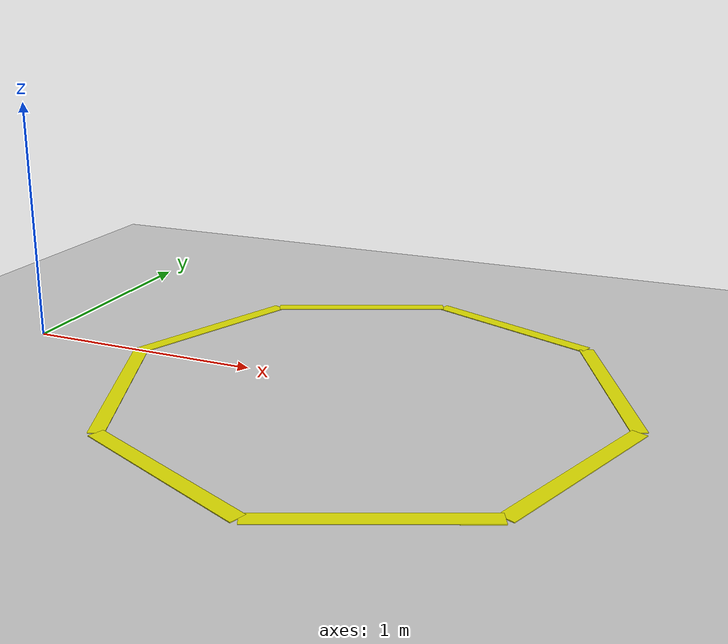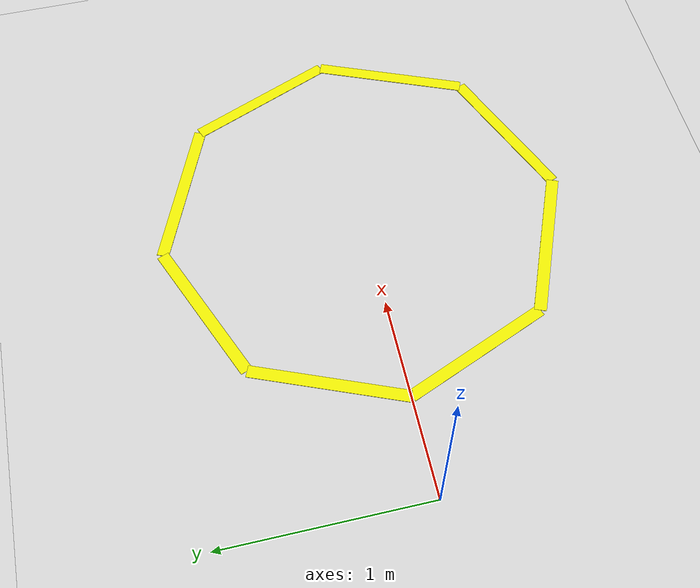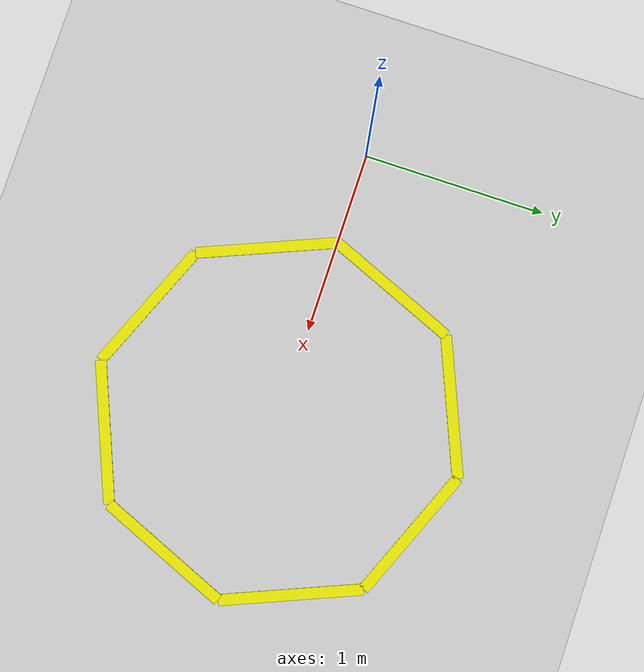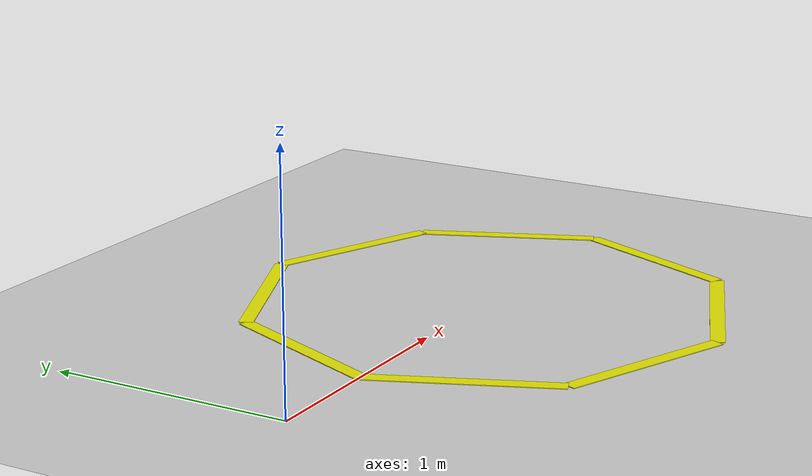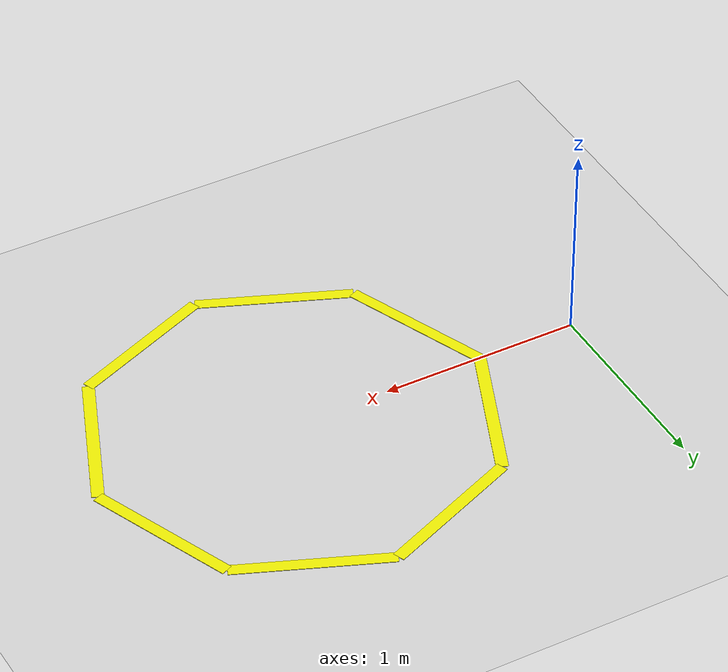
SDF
<?xml version="1.0"?>
<sdf version="1.6">
  <world name="line_track_world">
    <include><uri>model://ground_plane</uri></include>
    <include><uri>model://sun</uri></include>

    <model name="line_track">
      <static>true</static>
      <link name="link">
        <visual name="segment_0">
          <pose>2.3536 0.3536 0.0016 0 0 1.9635</pose>
          <geometry><box><size>0.7654 0.06 0.003</size></box></geometry>
          <material>
            <ambient>0.9 0.9 0.0 1</ambient>
            <diffuse>0.9 0.9 0.0 1</diffuse>
          </material>
        </visual>
        <visual name="segment_1">
          <pose>1.8536 0.8536 0.0016 0 0 2.7489</pose>
          <geometry><box><size>0.7654 0.06 0.003</size></box></geometry>
          <material>
            <ambient>0.9 0.9 0.0 1</ambient>
            <diffuse>0.9 0.9 0.0 1</diffuse>
          </material>
        </visual>
        <visual name="segment_2">
          <pose>1.1464 0.8536 0.0016 0 0 3.5343</pose>
          <geometry><box><size>0.7654 0.06 0.003</size></box></geometry>
          <material>
            <ambient>0.9 0.9 0.0 1</ambient>
            <diffuse>0.9 0.9 0.0 1</diffuse>
          </material>
        </visual>
        <visual name="segment_3">
          <pose>0.6464 0.3536 0.0016 0 0 4.3197</pose>
          <geometry><box><size>0.7654 0.06 0.003</size></box></geometry>
          <material>
            <ambient>0.9 0.9 0.0 1</ambient>
            <diffuse>0.9 0.9 0.0 1</diffuse>
          </material>
        </visual>
        <visual name="segment_4">
          <pose>0.6464 -0.3536 0.0016 0 0 5.1051</pose>
          <geometry><box><size>0.7654 0.06 0.003</size></box></geometry>
          <material>
            <ambient>0.9 0.9 0.0 1</ambient>
            <diffuse>0.9 0.9 0.0 1</diffuse>
          </material>
        </visual>
        <visual name="segment_5">
          <pose>1.1464 -0.8536 0.0016 0 0 5.8905</pose>
          <geometry><box><size>0.7654 0.06 0.003</size></box></geometry>
          <material>
            <ambient>0.9 0.9 0.0 1</ambient>
            <diffuse>0.9 0.9 0.0 1</diffuse>
          </material>
        </visual>
        <visual name="segment_6">
          <pose>1.8536 -0.8536 0.0016 0 0 0.3927</pose>
          <geometry><box><size>0.7654 0.06 0.003</size></box></geometry>
          <material>
            <ambient>0.9 0.9 0.0 1</ambient>
            <diffuse>0.9 0.9 0.0 1</diffuse>
          </material>
        </visual>
        <visual name="segment_7">
          <pose>2.3536 -0.3536 0.0016 0 0 1.1781</pose>
          <geometry><box><size>0.7654 0.06 0.003</size></box></geometry>
          <material>
            <ambient>0.9 0.9 0.0 1</ambient>
            <diffuse>0.9 0.9 0.0 1</diffuse>
          </material>
        </visual>
      </link>
    </model>

    <physics type="ode">
      <real_time_update_rate>1000.0</real_time_update_rate>
    </physics>
  </world>
</sdf>
